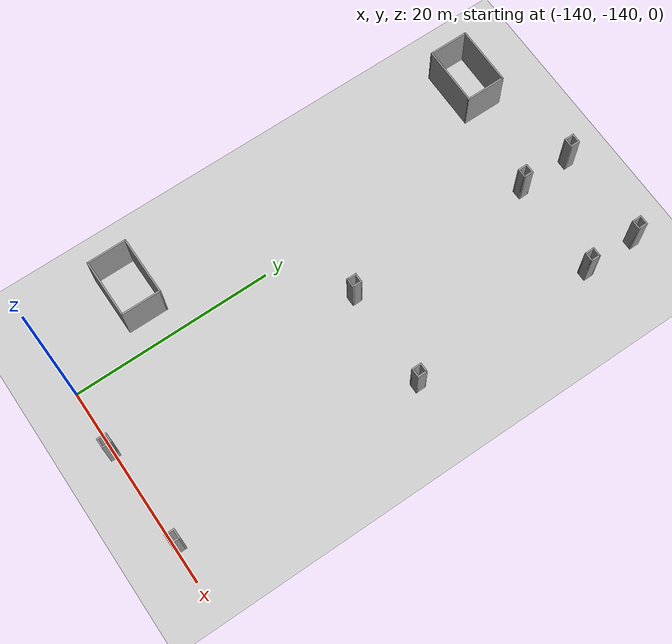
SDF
<sdf version="1.6">
 <world name="default">
  <model name="ground_plane">
   <static>1</static>
   <link name="link">
    <collision name="collision">
     <geometry><plane><normal>0 0 1</normal><size>320 320</size></plane></geometry>
     <surface>
      <contact><collide_bitmask>65535</collide_bitmask></contact>
      <friction><ode><mu>100</mu><mu2>50</mu2></ode></friction>
     </surface>
    </collision>
    <visual name="visual">
     <cast_shadows>0</cast_shadows>
     <geometry><plane><normal>0 0 1</normal><size>320 320</size></plane></geometry>
     <material>
      <script><uri>file://media/materials/scripts/gazebo.material</uri><name>Gazebo/Grey</name></script>
     </material>
    </visual>
   </link>
  </model>
  <model name="base4x6_8_clone_6">
   <pose>-145.285 -93.8574 0 0 -0 0</pose>
   <link name="Wall_23">
    <collision name="Wall_23_Collision">
     <geometry><box><size>4 0.15 6.555</size></box></geometry>
     <pose>0 0 1.25 0 -0 0</pose>
    </collision>
    <visual name="Wall_23_Visual">
     <pose>0 0 1.25 0 -0 0</pose>
     <geometry><box><size>4 0.15 6.555</size></box></geometry>
     <material>
      <script><uri>file://media/materials/scripts/gazebo.material</uri><name>Gazebo/Grey</name></script>
      <ambient>1 1 1 1</ambient>
     </material>
     <meta><layer>0</layer></meta>
    </visual>
    <pose>-2.925 0 0 0 -0 -1.5708</pose>
   </link>
   <link name="Wall_24">
    <collision name="Wall_24_Collision">
     <geometry><box><size>6 0.15 6.555</size></box></geometry>
     <pose>0 0 1.25 0 -0 0</pose>
    </collision>
    <visual name="Wall_24_Visual">
     <pose>0 0 1.25 0 -0 0</pose>
     <geometry><box><size>6 0.15 6.555</size></box></geometry>
     <material>
      <script><uri>file://media/materials/scripts/gazebo.material</uri><name>Gazebo/Grey</name></script>
      <ambient>1 1 1 1</ambient>
     </material>
     <meta><layer>0</layer></meta>
    </visual>
    <pose>-0 -1.925 0 0 -0 0</pose>
   </link>
   <link name="Wall_25">
    <collision name="Wall_25_Collision">
     <geometry><box><size>4 0.15 6.555</size></box></geometry>
     <pose>0 0 1.25 0 -0 0</pose>
    </collision>
    <visual name="Wall_25_Visual">
     <pose>0 0 1.25 0 -0 0</pose>
     <geometry><box><size>4 0.15 6.555</size></box></geometry>
     <material>
      <script><uri>file://media/materials/scripts/gazebo.material</uri><name>Gazebo/Grey</name></script>
      <ambient>1 1 1 1</ambient>
     </material>
     <meta><layer>0</layer></meta>
    </visual>
    <pose>2.925 0 0 0 -0 1.5708</pose>
   </link>
   <link name="Wall_26">
    <collision name="Wall_26_Collision">
     <geometry><box><size>6 0.15 6.555</size></box></geometry>
     <pose>0 0 1.25 0 -0 0</pose>
    </collision>
    <visual name="Wall_26_Visual">
     <pose>0 0 1.25 0 -0 0</pose>
     <geometry><box><size>6 0.15 6.555</size></box></geometry>
     <material>
      <script><uri>file://media/materials/scripts/gazebo.material</uri><name>Gazebo/Grey</name></script>
      <ambient>1 1 1 1</ambient>
     </material>
     <meta><layer>0</layer></meta>
    </visual>
    <pose>-0 1.925 0 0 -0 3.14159</pose>
   </link>
   <static>1</static>
  </model>
  <model name="base4x6_8_clone_7">
   <pose>-145.285 -131.102 0 0 -0 0</pose>
   <link name="Wall_23">
    <collision name="Wall_23_Collision">
     <geometry><box><size>4 0.15 6.555</size></box></geometry>
     <pose>0 0 1.25 0 -0 0</pose>
    </collision>
    <visual name="Wall_23_Visual">
     <pose>0 0 1.25 0 -0 0</pose>
     <geometry><box><size>4 0.15 6.555</size></box></geometry>
     <material>
      <script><uri>file://media/materials/scripts/gazebo.material</uri><name>Gazebo/Grey</name></script>
      <ambient>1 1 1 1</ambient>
     </material>
     <meta><layer>0</layer></meta>
    </visual>
    <pose>-2.925 0 0 0 -0 -1.5708</pose>
   </link>
   <link name="Wall_24">
    <collision name="Wall_24_Collision">
     <geometry><box><size>6 0.15 6.555</size></box></geometry>
     <pose>0 0 1.25 0 -0 0</pose>
    </collision>
    <visual name="Wall_24_Visual">
     <pose>0 0 1.25 0 -0 0</pose>
     <geometry><box><size>6 0.15 6.555</size></box></geometry>
     <material>
      <script><uri>file://media/materials/scripts/gazebo.material</uri><name>Gazebo/Grey</name></script>
      <ambient>1 1 1 1</ambient>
     </material>
     <meta><layer>0</layer></meta>
    </visual>
    <pose>-0 -1.925 0 0 -0 0</pose>
   </link>
   <link name="Wall_25">
    <collision name="Wall_25_Collision">
     <geometry><box><size>4 0.15 6.555</size></box></geometry>
     <pose>0 0 1.25 0 -0 0</pose>
    </collision>
    <visual name="Wall_25_Visual">
     <pose>0 0 1.25 0 -0 0</pose>
     <geometry><box><size>4 0.15 6.555</size></box></geometry>
     <material>
      <script><uri>file://media/materials/scripts/gazebo.material</uri><name>Gazebo/Grey</name></script>
      <ambient>1 1 1 1</ambient>
     </material>
     <meta><layer>0</layer></meta>
    </visual>
    <pose>2.925 0 0 0 -0 1.5708</pose>
   </link>
   <link name="Wall_26">
    <collision name="Wall_26_Collision">
     <geometry><box><size>6 0.15 6.555</size></box></geometry>
     <pose>0 0 1.25 0 -0 0</pose>
    </collision>
    <visual name="Wall_26_Visual">
     <pose>0 0 1.25 0 -0 0</pose>
     <geometry><box><size>6 0.15 6.555</size></box></geometry>
     <material>
      <script><uri>file://media/materials/scripts/gazebo.material</uri><name>Gazebo/Grey</name></script>
      <ambient>1 1 1 1</ambient>
     </material>
     <meta><layer>0</layer></meta>
    </visual>
    <pose>-0 1.925 0 0 -0 3.14159</pose>
   </link>
   <static>1</static>
  </model>
  <model name="box_1mx1m_15_clone_11">
   <pose>-123.678 -90.603 0 0 -0 0</pose>
   <link name="Wall_10">
    <collision name="Wall_10_Collision">
     <geometry><box><size>1 0.15 6.555</size></box></geometry>
     <pose>0 0 1.25 0 -0 0</pose>
    </collision>
    <visual name="Wall_10_Visual">
     <pose>0 0 1.25 0 -0 0</pose>
     <geometry><box><size>1 0.15 6.555</size></box></geometry>
     <material>
      <script><uri>file://media/materials/scripts/gazebo.material</uri><name>Gazebo/Grey</name></script>
      <ambient>1 1 1 1</ambient>
     </material>
     <meta><layer>0</layer></meta>
    </visual>
    <pose>-0.425 0 0 0 -0 -1.5708</pose>
   </link>
   <link name="Wall_11">
    <collision name="Wall_11_Collision">
     <geometry><box><size>1 0.15 6.555</size></box></geometry>
     <pose>0 0 1.25 0 -0 0</pose>
    </collision>
    <visual name="Wall_11_Visual">
     <pose>0 0 1.25 0 -0 0</pose>
     <geometry><box><size>1 0.15 6.555</size></box></geometry>
     <material>
      <script><uri>file://media/materials/scripts/gazebo.material</uri><name>Gazebo/Grey</name></script>
      <ambient>1 1 1 1</ambient>
     </material>
     <meta><layer>0</layer></meta>
    </visual>
    <pose>0 -0.425 0 0 -0 0</pose>
   </link>
   <link name="Wall_12">
    <collision name="Wall_12_Collision">
     <geometry><box><size>1 0.15 6.555</size></box></geometry>
     <pose>0 0 1.25 0 -0 0</pose>
    </collision>
    <visual name="Wall_12_Visual">
     <pose>0 0 1.25 0 -0 0</pose>
     <geometry><box><size>1 0.15 6.555</size></box></geometry>
     <material>
      <script><uri>file://media/materials/scripts/gazebo.material</uri><name>Gazebo/Grey</name></script>
      <ambient>1 1 1 1</ambient>
     </material>
     <meta><layer>0</layer></meta>
    </visual>
    <pose>0.425 0 0 0 -0 1.5708</pose>
   </link>
   <link name="Wall_13">
    <collision name="Wall_13_Collision">
     <geometry><box><size>1 0.15 6.555</size></box></geometry>
     <pose>0 0 1.25 0 -0 0</pose>
    </collision>
    <visual name="Wall_13_Visual">
     <pose>0 0 1.25 0 -0 0</pose>
     <geometry><box><size>1 0.15 6.555</size></box></geometry>
     <material>
      <script><uri>file://media/materials/scripts/gazebo.material</uri><name>Gazebo/Grey</name></script>
      <ambient>1 1 1 1</ambient>
     </material>
     <meta><layer>0</layer></meta>
    </visual>
    <pose>0 0.425 0 0 -0 3.14159</pose>
   </link>
   <static>1</static>
  </model>
  <model name="box_1mx1m_15_clone_12">
   <pose>-123.62 -95.9623 0 0 -0 0</pose>
   <link name="Wall_10">
    <collision name="Wall_10_Collision">
     <geometry><box><size>1 0.15 6.555</size></box></geometry>
     <pose>0 0 1.25 0 -0 0</pose>
    </collision>
    <visual name="Wall_10_Visual">
     <pose>0 0 1.25 0 -0 0</pose>
     <geometry><box><size>1 0.15 6.555</size></box></geometry>
     <material>
      <script><uri>file://media/materials/scripts/gazebo.material</uri><name>Gazebo/Grey</name></script>
      <ambient>1 1 1 1</ambient>
     </material>
     <meta><layer>0</layer></meta>
    </visual>
    <pose>-0.425 0 0 0 -0 -1.5708</pose>
   </link>
   <link name="Wall_11">
    <collision name="Wall_11_Collision">
     <geometry><box><size>1 0.15 6.555</size></box></geometry>
     <pose>0 0 1.25 0 -0 0</pose>
    </collision>
    <visual name="Wall_11_Visual">
     <pose>0 0 1.25 0 -0 0</pose>
     <geometry><box><size>1 0.15 6.555</size></box></geometry>
     <material>
      <script><uri>file://media/materials/scripts/gazebo.material</uri><name>Gazebo/Grey</name></script>
      <ambient>1 1 1 1</ambient>
     </material>
     <meta><layer>0</layer></meta>
    </visual>
    <pose>0 -0.425 0 0 -0 0</pose>
   </link>
   <link name="Wall_12">
    <collision name="Wall_12_Collision">
     <geometry><box><size>1 0.15 6.555</size></box></geometry>
     <pose>0 0 1.25 0 -0 0</pose>
    </collision>
    <visual name="Wall_12_Visual">
     <pose>0 0 1.25 0 -0 0</pose>
     <geometry><box><size>1 0.15 6.555</size></box></geometry>
     <material>
      <script><uri>file://media/materials/scripts/gazebo.material</uri><name>Gazebo/Grey</name></script>
      <ambient>1 1 1 1</ambient>
     </material>
     <meta><layer>0</layer></meta>
    </visual>
    <pose>0.425 0 0 0 -0 1.5708</pose>
   </link>
   <link name="Wall_13">
    <collision name="Wall_13_Collision">
     <geometry><box><size>1 0.15 6.555</size></box></geometry>
     <pose>0 0 1.25 0 -0 0</pose>
    </collision>
    <visual name="Wall_13_Visual">
     <pose>0 0 1.25 0 -0 0</pose>
     <geometry><box><size>1 0.15 6.555</size></box></geometry>
     <material>
      <script><uri>file://media/materials/scripts/gazebo.material</uri><name>Gazebo/Grey</name></script>
      <ambient>1 1 1 1</ambient>
     </material>
     <meta><layer>0</layer></meta>
    </visual>
    <pose>0 0.425 0 0 -0 3.14159</pose>
   </link>
   <static>1</static>
  </model>
  <model name="box_1mx1m_15_clone_13">
   <pose>-133.552 -90.5795 0 0 -0 0</pose>
   <link name="Wall_10">
    <collision name="Wall_10_Collision">
     <geometry><box><size>1 0.15 6.555</size></box></geometry>
     <pose>0 0 1.25 0 -0 0</pose>
    </collision>
    <visual name="Wall_10_Visual">
     <pose>0 0 1.25 0 -0 0</pose>
     <geometry><box><size>1 0.15 6.555</size></box></geometry>
     <material>
      <script><uri>file://media/materials/scripts/gazebo.material</uri><name>Gazebo/Grey</name></script>
      <ambient>1 1 1 1</ambient>
     </material>
     <meta><layer>0</layer></meta>
    </visual>
    <pose>-0.425 0 0 0 -0 -1.5708</pose>
   </link>
   <link name="Wall_11">
    <collision name="Wall_11_Collision">
     <geometry><box><size>1 0.15 6.555</size></box></geometry>
     <pose>0 0 1.25 0 -0 0</pose>
    </collision>
    <visual name="Wall_11_Visual">
     <pose>0 0 1.25 0 -0 0</pose>
     <geometry><box><size>1 0.15 6.555</size></box></geometry>
     <material>
      <script><uri>file://media/materials/scripts/gazebo.material</uri><name>Gazebo/Grey</name></script>
      <ambient>1 1 1 1</ambient>
     </material>
     <meta><layer>0</layer></meta>
    </visual>
    <pose>0 -0.425 0 0 -0 0</pose>
   </link>
   <link name="Wall_12">
    <collision name="Wall_12_Collision">
     <geometry><box><size>1 0.15 6.555</size></box></geometry>
     <pose>0 0 1.25 0 -0 0</pose>
    </collision>
    <visual name="Wall_12_Visual">
     <pose>0 0 1.25 0 -0 0</pose>
     <geometry><box><size>1 0.15 6.555</size></box></geometry>
     <material>
      <script><uri>file://media/materials/scripts/gazebo.material</uri><name>Gazebo/Grey</name></script>
      <ambient>1 1 1 1</ambient>
     </material>
     <meta><layer>0</layer></meta>
    </visual>
    <pose>0.425 0 0 0 -0 1.5708</pose>
   </link>
   <link name="Wall_13">
    <collision name="Wall_13_Collision">
     <geometry><box><size>1 0.15 6.555</size></box></geometry>
     <pose>0 0 1.25 0 -0 0</pose>
    </collision>
    <visual name="Wall_13_Visual">
     <pose>0 0 1.25 0 -0 0</pose>
     <geometry><box><size>1 0.15 6.555</size></box></geometry>
     <material>
      <script><uri>file://media/materials/scripts/gazebo.material</uri><name>Gazebo/Grey</name></script>
      <ambient>1 1 1 1</ambient>
     </material>
     <meta><layer>0</layer></meta>
    </visual>
    <pose>0 0.425 0 0 -0 3.14159</pose>
   </link>
   <static>1</static>
  </model>
  <model name="box_1mx1m_15_clone_14">
   <pose>-133.511 -95.9038 0 0 -0 0</pose>
   <link name="Wall_10">
    <collision name="Wall_10_Collision">
     <geometry><box><size>1 0.15 6.555</size></box></geometry>
     <pose>0 0 1.25 0 -0 0</pose>
    </collision>
    <visual name="Wall_10_Visual">
     <pose>0 0 1.25 0 -0 0</pose>
     <geometry><box><size>1 0.15 6.555</size></box></geometry>
     <material>
      <script><uri>file://media/materials/scripts/gazebo.material</uri><name>Gazebo/Grey</name></script>
      <ambient>1 1 1 1</ambient>
     </material>
     <meta><layer>0</layer></meta>
    </visual>
    <pose>-0.425 0 0 0 -0 -1.5708</pose>
   </link>
   <link name="Wall_11">
    <collision name="Wall_11_Collision">
     <geometry><box><size>1 0.15 6.555</size></box></geometry>
     <pose>0 0 1.25 0 -0 0</pose>
    </collision>
    <visual name="Wall_11_Visual">
     <pose>0 0 1.25 0 -0 0</pose>
     <geometry><box><size>1 0.15 6.555</size></box></geometry>
     <material>
      <script><uri>file://media/materials/scripts/gazebo.material</uri><name>Gazebo/Grey</name></script>
      <ambient>1 1 1 1</ambient>
     </material>
     <meta><layer>0</layer></meta>
    </visual>
    <pose>0 -0.425 0 0 -0 0</pose>
   </link>
   <link name="Wall_12">
    <collision name="Wall_12_Collision">
     <geometry><box><size>1 0.15 6.555</size></box></geometry>
     <pose>0 0 1.25 0 -0 0</pose>
    </collision>
    <visual name="Wall_12_Visual">
     <pose>0 0 1.25 0 -0 0</pose>
     <geometry><box><size>1 0.15 6.555</size></box></geometry>
     <material>
      <script><uri>file://media/materials/scripts/gazebo.material</uri><name>Gazebo/Grey</name></script>
      <ambient>1 1 1 1</ambient>
     </material>
     <meta><layer>0</layer></meta>
    </visual>
    <pose>0.425 0 0 0 -0 1.5708</pose>
   </link>
   <link name="Wall_13">
    <collision name="Wall_13_Collision">
     <geometry><box><size>1 0.15 6.555</size></box></geometry>
     <pose>0 0 1.25 0 -0 0</pose>
    </collision>
    <visual name="Wall_13_Visual">
     <pose>0 0 1.25 0 -0 0</pose>
     <geometry><box><size>1 0.15 6.555</size></box></geometry>
     <material>
      <script><uri>file://media/materials/scripts/gazebo.material</uri><name>Gazebo/Grey</name></script>
      <ambient>1 1 1 1</ambient>
     </material>
     <meta><layer>0</layer></meta>
    </visual>
    <pose>0 0.425 0 0 -0 3.14159</pose>
   </link>
   <static>1</static>
  </model>
  <model name="box_1mx1m_15_clone_15">
   <pose>-123.58 -114.731 0 0 -0 0</pose>
   <link name="Wall_10">
    <collision name="Wall_10_Collision">
     <geometry><box><size>1 0.15 6.555</size></box></geometry>
     <pose>0 0 1.25 0 -0 0</pose>
    </collision>
    <visual name="Wall_10_Visual">
     <pose>0 0 1.25 0 -0 0</pose>
     <geometry><box><size>1 0.15 6.555</size></box></geometry>
     <material>
      <script><uri>file://media/materials/scripts/gazebo.material</uri><name>Gazebo/Grey</name></script>
      <ambient>1 1 1 1</ambient>
     </material>
     <meta><layer>0</layer></meta>
    </visual>
    <pose>-0.425 0 0 0 -0 -1.5708</pose>
   </link>
   <link name="Wall_11">
    <collision name="Wall_11_Collision">
     <geometry><box><size>1 0.15 6.555</size></box></geometry>
     <pose>0 0 1.25 0 -0 0</pose>
    </collision>
    <visual name="Wall_11_Visual">
     <pose>0 0 1.25 0 -0 0</pose>
     <geometry><box><size>1 0.15 6.555</size></box></geometry>
     <material>
      <script><uri>file://media/materials/scripts/gazebo.material</uri><name>Gazebo/Grey</name></script>
      <ambient>1 1 1 1</ambient>
     </material>
     <meta><layer>0</layer></meta>
    </visual>
    <pose>0 -0.425 0 0 -0 0</pose>
   </link>
   <link name="Wall_12">
    <collision name="Wall_12_Collision">
     <geometry><box><size>1 0.15 6.555</size></box></geometry>
     <pose>0 0 1.25 0 -0 0</pose>
    </collision>
    <visual name="Wall_12_Visual">
     <pose>0 0 1.25 0 -0 0</pose>
     <geometry><box><size>1 0.15 6.555</size></box></geometry>
     <material>
      <script><uri>file://media/materials/scripts/gazebo.material</uri><name>Gazebo/Grey</name></script>
      <ambient>1 1 1 1</ambient>
     </material>
     <meta><layer>0</layer></meta>
    </visual>
    <pose>0.425 0 0 0 -0 1.5708</pose>
   </link>
   <link name="Wall_13">
    <collision name="Wall_13_Collision">
     <geometry><box><size>1 0.15 6.555</size></box></geometry>
     <pose>0 0 1.25 0 -0 0</pose>
    </collision>
    <visual name="Wall_13_Visual">
     <pose>0 0 1.25 0 -0 0</pose>
     <geometry><box><size>1 0.15 6.555</size></box></geometry>
     <material>
      <script><uri>file://media/materials/scripts/gazebo.material</uri><name>Gazebo/Grey</name></script>
      <ambient>1 1 1 1</ambient>
     </material>
     <meta><layer>0</layer></meta>
    </visual>
    <pose>0 0.425 0 0 -0 3.14159</pose>
   </link>
   <static>1</static>
  </model>
  <model name="box_1mx1m_15_clone_16">
   <pose>-123.447 -139.626 0 0 -0 0</pose>
   <link name="Wall_10">
    <collision name="Wall_10_Collision">
     <geometry><box><size>1 0.15 6.555</size></box></geometry>
     <pose>0 0 1.25 0 -0 0</pose>
    </collision>
    <visual name="Wall_10_Visual">
     <pose>0 0 1.25 0 -0 0</pose>
     <geometry><box><size>1 0.15 6.555</size></box></geometry>
     <material>
      <script><uri>file://media/materials/scripts/gazebo.material</uri><name>Gazebo/Grey</name></script>
      <ambient>1 1 1 1</ambient>
     </material>
     <meta><layer>0</layer></meta>
    </visual>
    <pose>-0.425 0 0 0 -0 -1.5708</pose>
   </link>
   <link name="Wall_11">
    <collision name="Wall_11_Collision">
     <geometry><box><size>1 0.15 6.555</size></box></geometry>
     <pose>0 0 1.25 0 -0 0</pose>
    </collision>
    <visual name="Wall_11_Visual">
     <pose>0 0 1.25 0 -0 0</pose>
     <geometry><box><size>1 0.15 6.555</size></box></geometry>
     <material>
      <script><uri>file://media/materials/scripts/gazebo.material</uri><name>Gazebo/Grey</name></script>
      <ambient>1 1 1 1</ambient>
     </material>
     <meta><layer>0</layer></meta>
    </visual>
    <pose>0 -0.425 0 0 -0 0</pose>
   </link>
   <link name="Wall_12">
    <collision name="Wall_12_Collision">
     <geometry><box><size>1 0.15 6.555</size></box></geometry>
     <pose>0 0 1.25 0 -0 0</pose>
    </collision>
    <visual name="Wall_12_Visual">
     <pose>0 0 1.25 0 -0 0</pose>
     <geometry><box><size>1 0.15 6.555</size></box></geometry>
     <material>
      <script><uri>file://media/materials/scripts/gazebo.material</uri><name>Gazebo/Grey</name></script>
      <ambient>1 1 1 1</ambient>
     </material>
     <meta><layer>0</layer></meta>
    </visual>
    <pose>0.425 0 0 0 -0 1.5708</pose>
   </link>
   <link name="Wall_13">
    <collision name="Wall_13_Collision">
     <geometry><box><size>1 0.15 6.555</size></box></geometry>
     <pose>0 0 1.25 0 -0 0</pose>
    </collision>
    <visual name="Wall_13_Visual">
     <pose>0 0 1.25 0 -0 0</pose>
     <geometry><box><size>1 0.15 6.555</size></box></geometry>
     <material>
      <script><uri>file://media/materials/scripts/gazebo.material</uri><name>Gazebo/Grey</name></script>
      <ambient>1 1 1 1</ambient>
     </material>
     <meta><layer>0</layer></meta>
    </visual>
    <pose>0 0.425 0 0 -0 3.14159</pose>
   </link>
   <static>1</static>
  </model>
  <model name="box_1mx1m_15_clone_2_clone_8">
   <pose>-133.533 -114.65 0 0 -0 0</pose>
   <link name="Wall_10">
    <collision name="Wall_10_Collision">
     <geometry><box><size>1 0.15 6.555</size></box></geometry>
     <pose>0 0 1.25 0 -0 0</pose>
    </collision>
    <visual name="Wall_10_Visual">
     <pose>0 0 1.25 0 -0 0</pose>
     <geometry><box><size>1 0.15 6.555</size></box></geometry>
     <material>
      <script><uri>file://media/materials/scripts/gazebo.material</uri><name>Gazebo/Grey</name></script>
      <ambient>1 1 1 1</ambient>
     </material>
     <meta><layer>0</layer></meta>
    </visual>
    <pose>-0.425 0 0 0 -0 -1.5708</pose>
   </link>
   <link name="Wall_11">
    <collision name="Wall_11_Collision">
     <geometry><box><size>1 0.15 6.555</size></box></geometry>
     <pose>0 0 1.25 0 -0 0</pose>
    </collision>
    <visual name="Wall_11_Visual">
     <pose>0 0 1.25 0 -0 0</pose>
     <geometry><box><size>1 0.15 6.555</size></box></geometry>
     <material>
      <script><uri>file://media/materials/scripts/gazebo.material</uri><name>Gazebo/Grey</name></script>
      <ambient>1 1 1 1</ambient>
     </material>
     <meta><layer>0</layer></meta>
    </visual>
    <pose>0 -0.425 0 0 -0 0</pose>
   </link>
   <link name="Wall_12">
    <collision name="Wall_12_Collision">
     <geometry><box><size>1 0.15 6.555</size></box></geometry>
     <pose>0 0 1.25 0 -0 0</pose>
    </collision>
    <visual name="Wall_12_Visual">
     <pose>0 0 1.25 0 -0 0</pose>
     <geometry><box><size>1 0.15 6.555</size></box></geometry>
     <material>
      <script><uri>file://media/materials/scripts/gazebo.material</uri><name>Gazebo/Grey</name></script>
      <ambient>1 1 1 1</ambient>
     </material>
     <meta><layer>0</layer></meta>
    </visual>
    <pose>0.425 0 0 0 -0 1.5708</pose>
   </link>
   <link name="Wall_13">
    <collision name="Wall_13_Collision">
     <geometry><box><size>1 0.15 6.555</size></box></geometry>
     <pose>0 0 1.25 0 -0 0</pose>
    </collision>
    <visual name="Wall_13_Visual">
     <pose>0 0 1.25 0 -0 0</pose>
     <geometry><box><size>1 0.15 6.555</size></box></geometry>
     <material>
      <script><uri>file://media/materials/scripts/gazebo.material</uri><name>Gazebo/Grey</name></script>
      <ambient>1 1 1 1</ambient>
     </material>
     <meta><layer>0</layer></meta>
    </visual>
    <pose>0 0.425 0 0 -0 3.14159</pose>
   </link>
   <static>1</static>
  </model>
  <model name="box_1mx1m_15_clone_2_clone_9">
   <pose>-133.556 -140.063 0 0 -0 0</pose>
   <link name="Wall_10">
    <collision name="Wall_10_Collision">
     <geometry><box><size>1 0.15 6.555</size></box></geometry>
     <pose>0 0 1.25 0 -0 0</pose>
    </collision>
    <visual name="Wall_10_Visual">
     <pose>0 0 1.25 0 -0 0</pose>
     <geometry><box><size>1 0.15 6.555</size></box></geometry>
     <material>
      <script><uri>file://media/materials/scripts/gazebo.material</uri><name>Gazebo/Grey</name></script>
      <ambient>1 1 1 1</ambient>
     </material>
     <meta><layer>0</layer></meta>
    </visual>
    <pose>-0.425 0 0 0 -0 -1.5708</pose>
   </link>
   <link name="Wall_11">
    <collision name="Wall_11_Collision">
     <geometry><box><size>1 0.15 6.555</size></box></geometry>
     <pose>0 0 1.25 0 -0 0</pose>
    </collision>
    <visual name="Wall_11_Visual">
     <pose>0 0 1.25 0 -0 0</pose>
     <geometry><box><size>1 0.15 6.555</size></box></geometry>
     <material>
      <script><uri>file://media/materials/scripts/gazebo.material</uri><name>Gazebo/Grey</name></script>
      <ambient>1 1 1 1</ambient>
     </material>
     <meta><layer>0</layer></meta>
    </visual>
    <pose>0 -0.425 0 0 -0 0</pose>
   </link>
   <link name="Wall_12">
    <collision name="Wall_12_Collision">
     <geometry><box><size>1 0.15 6.555</size></box></geometry>
     <pose>0 0 1.25 0 -0 0</pose>
    </collision>
    <visual name="Wall_12_Visual">
     <pose>0 0 1.25 0 -0 0</pose>
     <geometry><box><size>1 0.15 6.555</size></box></geometry>
     <material>
      <script><uri>file://media/materials/scripts/gazebo.material</uri><name>Gazebo/Grey</name></script>
      <ambient>1 1 1 1</ambient>
     </material>
     <meta><layer>0</layer></meta>
    </visual>
    <pose>0.425 0 0 0 -0 1.5708</pose>
   </link>
   <link name="Wall_13">
    <collision name="Wall_13_Collision">
     <geometry><box><size>1 0.15 6.555</size></box></geometry>
     <pose>0 0 1.25 0 -0 0</pose>
    </collision>
    <visual name="Wall_13_Visual">
     <pose>0 0 1.25 0 -0 0</pose>
     <geometry><box><size>1 0.15 6.555</size></box></geometry>
     <material>
      <script><uri>file://media/materials/scripts/gazebo.material</uri><name>Gazebo/Grey</name></script>
      <ambient>1 1 1 1</ambient>
     </material>
     <meta><layer>0</layer></meta>
    </visual>
    <pose>0 0.425 0 0 -0 3.14159</pose>
   </link>
   <static>1</static>
  </model>
 </world>
</sdf>
